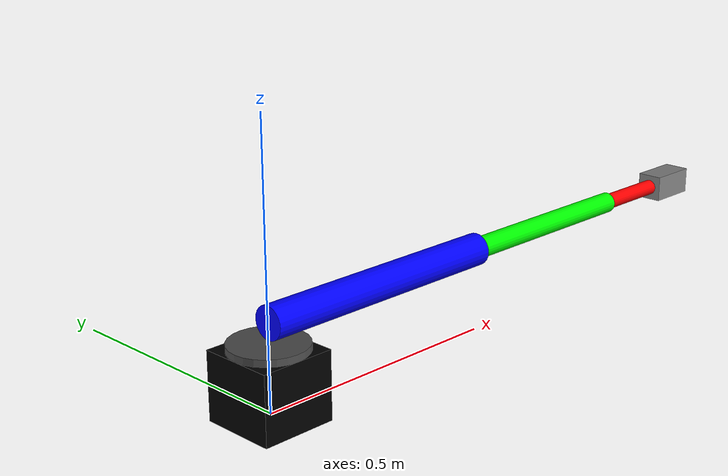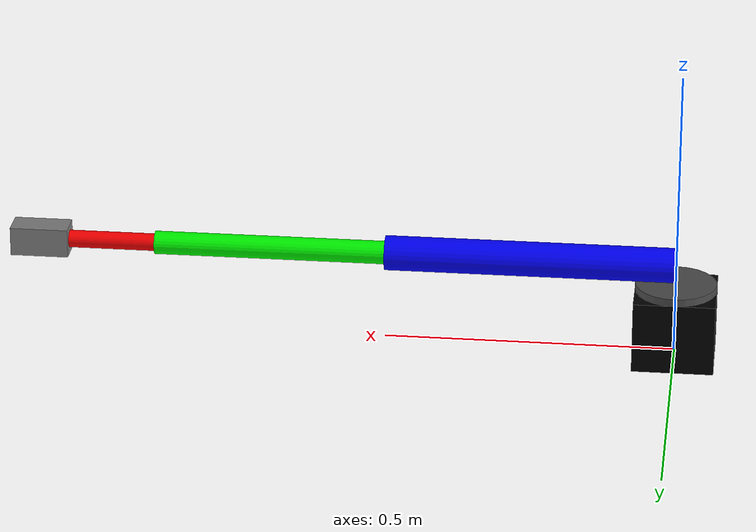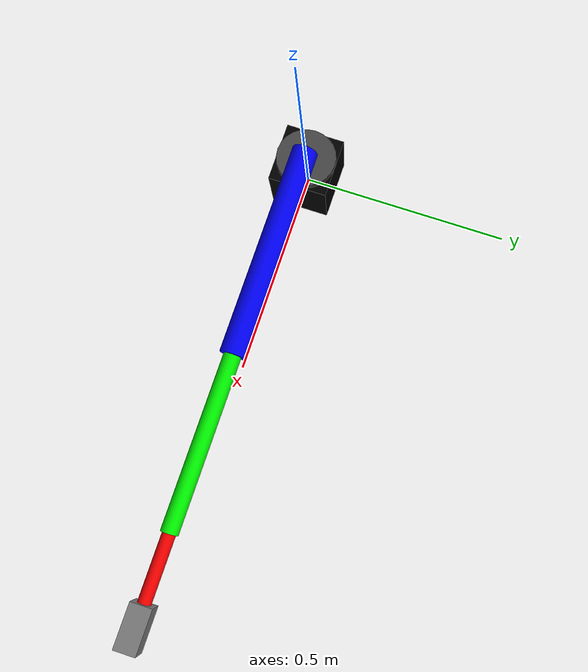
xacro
<?xml version='1.0'?>
<robot name="robot_arm" xmlns:xacro="http://www.ros.org/wiki/xacro">

  <!-- === BASE LINK (root) === -->
  <link name="base">
    <visual>
      <!-- base center at z=0.05, box height 0.125 -> top at 0.1125 -->
      <origin xyz="0 0 0.05" rpy="0 0 0"/>
      <geometry>
        <box size="0.14 0.14 0.125"/>
      </geometry>
      <material name="Black">
        <color rgba="0 0 0 1"/>
      </material>
    </visual>
    <collision>
      <origin xyz="0 0 0.05" rpy="0 0 0"/>
      <geometry>
        <box size="0.14 0.14 0.125"/>
      </geometry>
    </collision>
    <inertial>
      <mass value="1.0"/>
      <inertia ixx="0.002" iyy="0.002" izz="0.003" ixy="0" ixz="0" iyz="0"/>
    </inertial>
  </link>

  <!-- === FIRST ROTATING JOINT (Z-axis) === -->
  <!-- joint placed at the top of the base: top = base origin z (0.05) + half height (0.0625) = 0.1125 -->
  <joint name="base_rotator" type="revolute">
    <parent link="base"/>
    <child link="base_rotator_link"/>
    <origin xyz="0 0 0.1125" rpy="0 0 0"/>
    <axis xyz="0 0 1"/> <!-- rotation around Z -->
    <limit effort="1000.0" lower="-3.14" upper="3.14" velocity="0.5"/>
  </joint>

  <link name="base_rotator_link">
    <!-- thin disk / motor holder on top of base -->
    <!-- disk center at 0.005 above its local origin; with link origin at 0.1125, visual center becomes 0.1175 -->
    <visual>
      <origin xyz="0 0 0.005" rpy="0 0 0"/>
      <geometry>
        <cylinder radius="0.07" length="0.015"/> <!-- ~14 cm diameter (0.07 radius), 1.5 cm thick -->
      </geometry>
      <material name="Gray">
        <color rgba="0.3 0.3 0.3 1"/>
      </material>
    </visual>
    <collision>
      <origin xyz="0 0 0.005" rpy="0 0 0"/>
      <geometry>
        <cylinder radius="0.07" length="0.015"/>
      </geometry>
    </collision>
    <inertial>
      <mass value="0.2"/>
      <inertia ixx="0.0002" iyy="0.0002" izz="0.0003" ixy="0" ixz="0" iyz="0"/>
    </inertial>
  </link>

  <!-- === SHOULDER JOINT (Y-axis) === -->
  <!-- shoulder is attached 4.5 cm above the base_rotator joint -->
  <!-- base_rotator joint origin z = 0.1125 -> shoulder bottom at 0.1125 + 0.045 = 0.1575 -->
  <joint name="shoulder_joint" type="revolute">
    <parent link="base_rotator_link"/>
    <child link="shoulder"/>
    <origin xyz="0 0 0.045" rpy="0 1.5708 0"/>
    <axis xyz="0 -1 0"/> <!-- rotation around Y -->
    <limit effort="1000.0" lower="0" upper="1.55" velocity="0.5"/>
  </joint>

  <!-- === SHOULDER LINK === -->
  <!-- shoulder visual/collision origin is relative to shoulder link origin -->
  <link name="shoulder">
    <!-- visual origin at z=0.25 (so cylinder center is at shoulder_origin_z + 0.25) -->
    <visual>
      <origin xyz="0 0 0.25" rpy="0 0 0"/>
      <geometry>
        <cylinder radius="0.03" length="0.5"/>
      </geometry>
      <material name="Blue">
        <color rgba="0 0 1 1"/>
      </material>
    </visual>
    <collision>
      <origin xyz="0 0 0.25" rpy="0 0 0"/>
      <geometry>
        <cylinder radius="0.03" length="0.5"/>
      </geometry>
    </collision>
    <inertial>
      <mass value="0.7"/>
      <inertia ixx="0.0105" iyy="0.0105" izz="0.003" ixy="0" ixz="0" iyz="0"/>
    </inertial>
  </link>

  <!-- === ELBOW === -->
  <!-- elbow joint located at shoulder_origin + 0.5 (so at shoulder bottom z 0.1575 + 0.5 = 0.6575 world z) -->
  <joint name="shoulder_elbow" type="revolute">
    <parent link="shoulder"/>
    <child link="elbow"/>
    <origin xyz="0 0 0.5" rpy="0 0 0"/>
    <axis xyz="0 1 0"/>
    <limit effort="1000.0" lower="0" upper="1.55" velocity="0.5"/>
  </joint>

  <link name="elbow">
    <visual>
      <origin xyz="0 0 0.2" rpy="0 0 0"/>
      <geometry>
        <cylinder radius="0.02" length="0.4"/>
      </geometry>
      <material name="Green">
        <color rgba="0 1 0 1"/>
      </material>
    </visual>
    <collision>
      <origin xyz="0 0 0.2" rpy="0 0 0"/>
      <geometry>
        <cylinder radius="0.02" length="0.4"/>
      </geometry>
    </collision>
    <inertial>
      <mass value="0.3"/>
      <inertia ixx="0.0042" iyy="0.0042" izz="0.00006" ixy="0" ixz="0" iyz="0"/>
    </inertial>
  </link>

  <!-- === WRIST === -->
  <joint name="elbow_wrist" type="revolute">
    <parent link="elbow"/>
    <child link="wrist"/>
    <origin xyz="0 0 0.4" rpy="0 0 0"/>
    <axis xyz="0 1 0"/>
    <limit effort="1000.0" lower="0" upper="1.55" velocity="0.5"/>
  </joint>

  <link name="wrist">
    <visual>
      <origin xyz="0 0 0.075" rpy="0 0 0"/>
      <geometry>
        <cylinder radius="0.015" length="0.15"/>
      </geometry>
      <material name="Red">
        <color rgba="1 0 0 1"/>
      </material>
    </visual>
    <collision>
      <origin xyz="0 0 0.075" rpy="0 0 0"/>
      <geometry>
        <cylinder radius="0.015" length="0.15"/>
      </geometry>
    </collision>
    <inertial>
      <mass value="0.06"/>
      <inertia ixx="0.00012" iyy="0.00012" izz="0.00007" ixy="0" ixz="0" iyz="0"/>
    </inertial>
  </link>

  <!-- === GRABBER === -->
  <joint name="wrist_grabber" type="continuous">
    <parent link="wrist"/>
    <child link="grabber"/>
    <origin xyz="0 0 0.15" rpy="0 0 0"/>
    <axis xyz="0 0 1"/>
  </joint>

  <link name="grabber">
    <visual>
      <origin xyz="0 0 0.05" rpy="0 0 0"/>
      <geometry>
        <box size="0.05 0.05 0.1"/>
      </geometry>
      <material name="Gray">
        <color rgba="0.5 0.5 0.5 1"/>
      </material>
    </visual>
    <collision>
      <origin xyz="0 0 0.05" rpy="0 0 0"/>
      <geometry>
        <box size="0.05 0.05 0.1"/>
      </geometry>
    </collision>
    <inertial>
      <mass value="0.15"/>
      <inertia ixx="0.00013" iyy="0.00013" izz="0.0006" ixy="0" ixz="0" iyz="0"/>
    </inertial>
  </link>

</robot>
